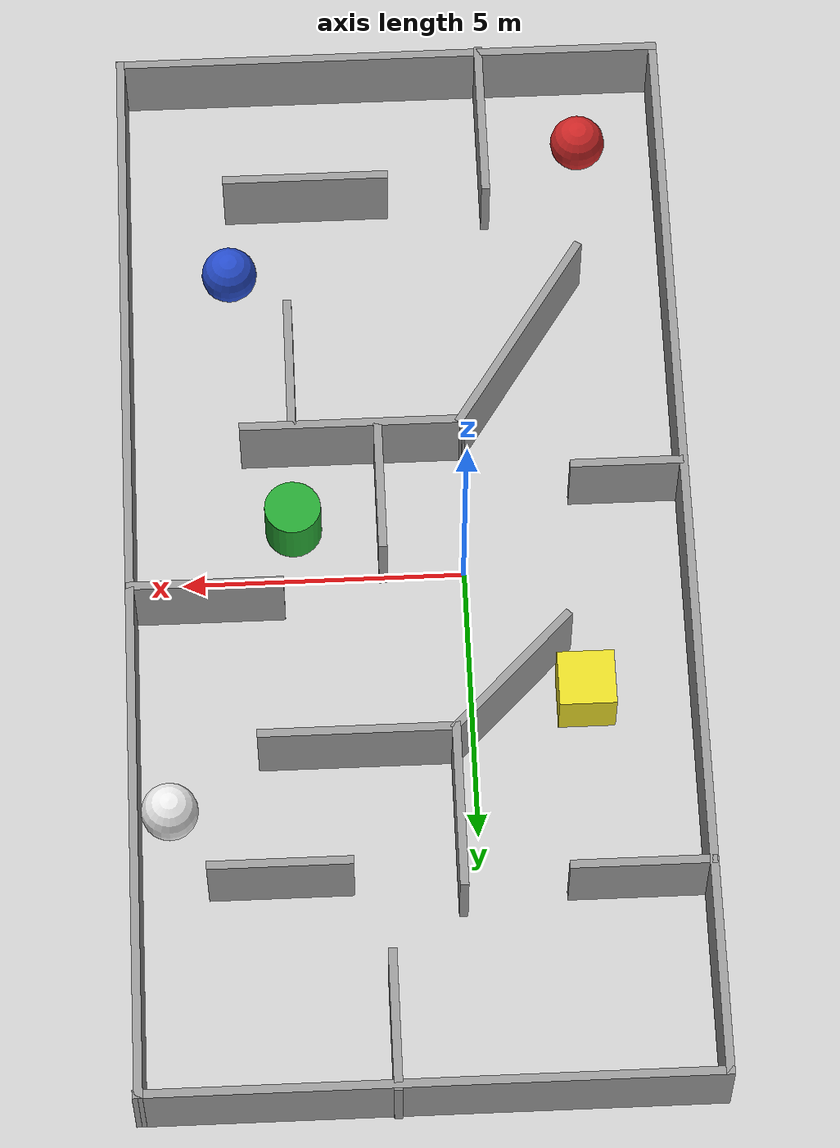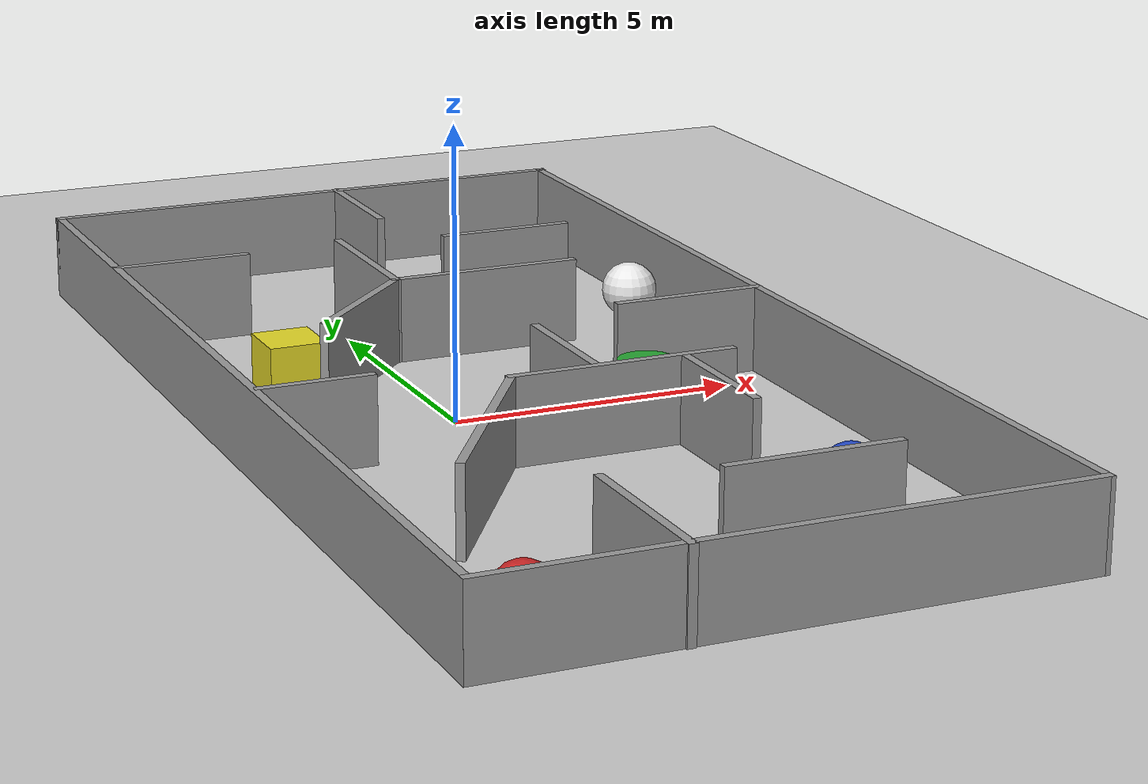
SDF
<sdf version="1.7">
 <world name="default">
  <model name="ground_plane">
   <static>1</static>
   <link name="link">
    <collision name="collision">
     <geometry><plane><normal>0 0 1</normal><size>100 100</size></plane></geometry>
     <surface><friction><ode><mu>100</mu><mu2>50</mu2></ode></friction></surface>
    </collision>
    <visual name="visual">
     <cast_shadows>0</cast_shadows>
     <geometry><plane><normal>0 0 1</normal><size>100 100</size></plane></geometry>
     <material>
      <script><uri>file://media/materials/scripts/gazebo.material</uri><name>Gazebo/Grey</name></script>
     </material>
    </visual>
   </link>
  </model>
  <model name="puzzle">
   <pose>1 0 0 0 -0 1.57</pose>
   <link name="Wall_0">
    <collision name="Wall_0_Collision">
     <geometry><box><size>20 0.15 1.5</size></box></geometry>
     <pose>0 0 0.75 0 -0 0</pose>
    </collision>
    <visual name="Wall_0_Visual">
     <pose>0 0 0.75 0 -0 0</pose>
     <geometry><box><size>20 0.15 1.5</size></box></geometry>
     <material>
      <script><uri>file://media/materials/scripts/gazebo.material</uri><name>Gazebo/Grey</name></script>
      <ambient>1 1 1 1</ambient>
     </material>
     <meta><layer>0</layer></meta>
    </visual>
    <pose>-0.003 -4.885 0 0 -0 -0.00131</pose>
   </link>
   <link name="Wall_10">
    <collision name="Wall_10_Collision">
     <geometry><box><size>3 0.15 1.5</size></box></geometry>
     <pose>0 0 0.75 0 -0 0</pose>
    </collision>
    <visual name="Wall_10_Visual">
     <pose>0 0 0.75 0 -0 0</pose>
     <geometry><box><size>3 0.15 1.5</size></box></geometry>
     <material>
      <script><uri>file://media/materials/scripts/gazebo.material</uri><name>Gazebo/Grey</name></script>
      <ambient>1 1 1 1</ambient>
     </material>
     <meta><layer>0</layer></meta>
    </visual>
    <pose>-8.533 1.712 0 0 -0 0</pose>
   </link>
   <link name="Wall_12">
    <collision name="Wall_12_Collision">
     <geometry><box><size>4.22942 0.15 1.5</size></box></geometry>
     <pose>0 0 0.75 0 -0 0</pose>
    </collision>
    <visual name="Wall_12_Visual">
     <pose>0 0 0.75 0 -0 0</pose>
     <geometry><box><size>4.22942 0.15 1.5</size></box></geometry>
     <material>
      <script><uri>file://media/materials/scripts/gazebo.material</uri><name>Gazebo/Grey</name></script>
      <ambient>1 1 1 1</ambient>
     </material>
     <meta><layer>0</layer></meta>
    </visual>
    <pose>-4.08 2.1565 0 0 -0 -0.583856</pose>
   </link>
   <link name="Wall_13">
    <collision name="Wall_13_Collision">
     <geometry><box><size>4 0.15 1.5</size></box></geometry>
     <pose>0 0 0.75 0 -0 0</pose>
    </collision>
    <visual name="Wall_13_Visual">
     <pose>0 0 0.75 0 -0 0</pose>
     <geometry><box><size>4 0.15 1.5</size></box></geometry>
     <material>
      <script><uri>file://media/materials/scripts/gazebo.material</uri><name>Gazebo/Grey</name></script>
      <ambient>1 1 1 1</ambient>
     </material>
     <meta><layer>0</layer></meta>
    </visual>
    <pose>-2.378 -0.893 0 0 -0 -1.5708</pose>
   </link>
   <link name="Wall_15">
    <collision name="Wall_15_Collision">
     <geometry><box><size>2.5 0.15 1.5</size></box></geometry>
     <pose>0 0 0.75 0 -0 0</pose>
    </collision>
    <visual name="Wall_15_Visual">
     <pose>0 0 0.75 0 -0 0</pose>
     <geometry><box><size>2.5 0.15 1.5</size></box></geometry>
     <material>
      <script><uri>file://media/materials/scripts/gazebo.material</uri><name>Gazebo/Grey</name></script>
      <ambient>1 1 1 1</ambient>
     </material>
     <meta><layer>0</layer></meta>
    </visual>
    <pose>-1.175 -0.443 0 0 -0 0</pose>
   </link>
   <link name="Wall_19">
    <collision name="Wall_19_Collision">
     <geometry><box><size>2.5 0.15 1.5</size></box></geometry>
     <pose>0 0 0.75 0 -0 0</pose>
    </collision>
    <visual name="Wall_19_Visual">
     <pose>0 0 0.75 0 -0 0</pose>
     <geometry><box><size>2.5 0.15 1.5</size></box></geometry>
     <material>
      <script><uri>file://media/materials/scripts/gazebo.material</uri><name>Gazebo/Grey</name></script>
      <ambient>1 1 1 1</ambient>
     </material>
     <meta><layer>0</layer></meta>
    </visual>
    <pose>-3.639 -1.965 0 0 -0 3.14159</pose>
   </link>
   <link name="Wall_21">
    <collision name="Wall_21_Collision">
     <geometry><box><size>3 0.15 1.5</size></box></geometry>
     <pose>0 0 0.75 0 -0 0</pose>
    </collision>
    <visual name="Wall_21_Visual">
     <pose>0 0 0.75 0 -0 0</pose>
     <geometry><box><size>3 0.15 1.5</size></box></geometry>
     <material>
      <script><uri>file://media/materials/scripts/gazebo.material</uri><name>Gazebo/Grey</name></script>
      <ambient>1 1 1 1</ambient>
     </material>
     <meta><layer>0</layer></meta>
    </visual>
    <pose>-7.415 -1.557 0 0 -0 -1.5708</pose>
   </link>
   <link name="Wall_24">
    <collision name="Wall_24_Collision">
     <geometry><box><size>2.75 0.15 1.5</size></box></geometry>
     <pose>0 0 0.75 0 -0 0</pose>
    </collision>
    <visual name="Wall_24_Visual">
     <pose>0 0 0.75 0 -0 0</pose>
     <geometry><box><size>2.75 0.15 1.5</size></box></geometry>
     <material>
      <script><uri>file://media/materials/scripts/gazebo.material</uri><name>Gazebo/Grey</name></script>
      <ambient>1 1 1 1</ambient>
     </material>
     <meta><layer>0</layer></meta>
    </visual>
    <pose>0.645 -3.575 0 0 -0 -1.5708</pose>
   </link>
   <link name="Wall_26">
    <collision name="Wall_26_Collision">
     <geometry><box><size>2 0.15 1.5</size></box></geometry>
     <pose>0 0 0.75 0 -0 0</pose>
    </collision>
    <visual name="Wall_26_Visual">
     <pose>0 0 0.75 0 -0 0</pose>
     <geometry><box><size>2 0.15 1.5</size></box></geometry>
     <material>
      <script><uri>file://media/materials/scripts/gazebo.material</uri><name>Gazebo/Grey</name></script>
      <ambient>1 1 1 1</ambient>
     </material>
     <meta><layer>0</layer></meta>
    </visual>
    <pose>-1.406 3.92 0 0 -0 -1.5708</pose>
   </link>
   <link name="Wall_28">
    <collision name="Wall_28_Collision">
     <geometry><box><size>3 0.15 1.5</size></box></geometry>
     <pose>0 0 0.75 0 -0 0</pose>
    </collision>
    <visual name="Wall_28_Visual">
     <pose>0 0 0.75 0 -0 0</pose>
     <geometry><box><size>3 0.15 1.5</size></box></geometry>
     <material>
      <script><uri>file://media/materials/scripts/gazebo.material</uri><name>Gazebo/Grey</name></script>
      <ambient>1 1 1 1</ambient>
     </material>
     <meta><layer>0</layer></meta>
    </visual>
    <pose>2.518 1.6855 0 0 -0 -0.78515</pose>
   </link>
   <link name="Wall_29">
    <collision name="Wall_29_Collision">
     <geometry><box><size>3.5 0.15 1.5</size></box></geometry>
     <pose>0 0 0.75 0 -0 0</pose>
    </collision>
    <visual name="Wall_29_Visual">
     <pose>0 0 0.75 0 -0 0</pose>
     <geometry><box><size>3.5 0.15 1.5</size></box></geometry>
     <material>
      <script><uri>file://media/materials/scripts/gazebo.material</uri><name>Gazebo/Grey</name></script>
      <ambient>1 1 1 1</ambient>
     </material>
     <meta><layer>0</layer></meta>
    </visual>
    <pose>3.526 -0.997 0 0 -0 -1.5708</pose>
   </link>
   <link name="Wall_31">
    <collision name="Wall_31_Collision">
     <geometry><box><size>3 0.15 1.5</size></box></geometry>
     <pose>0 0 0.75 0 -0 0</pose>
    </collision>
    <visual name="Wall_31_Visual">
     <pose>0 0 0.75 0 -0 0</pose>
     <geometry><box><size>3 0.15 1.5</size></box></geometry>
     <material>
      <script><uri>file://media/materials/scripts/gazebo.material</uri><name>Gazebo/Grey</name></script>
      <ambient>1 1 1 1</ambient>
     </material>
     <meta><layer>0</layer></meta>
    </visual>
    <pose>4.951 0.678 0 0 -0 0</pose>
   </link>
   <link name="Wall_34">
    <collision name="Wall_34_Collision">
     <geometry><box><size>2.5 0.15 1.5</size></box></geometry>
     <pose>0 0 0.75 0 -0 0</pose>
    </collision>
    <visual name="Wall_34_Visual">
     <pose>0 0 0.75 0 -0 0</pose>
     <geometry><box><size>2.5 0.15 1.5</size></box></geometry>
     <material>
      <script><uri>file://media/materials/scripts/gazebo.material</uri><name>Gazebo/Grey</name></script>
      <ambient>1 1 1 1</ambient>
     </material>
     <meta><layer>0</layer></meta>
    </visual>
    <pose>5.915 -2.424 0 0 -0 -1.5708</pose>
   </link>
   <link name="Wall_36">
    <collision name="Wall_36_Collision">
     <geometry><box><size>2.5 0.15 1.5</size></box></geometry>
     <pose>0 0 0.75 0 -0 0</pose>
    </collision>
    <visual name="Wall_36_Visual">
     <pose>0 0 0.75 0 -0 0</pose>
     <geometry><box><size>2.5 0.15 1.5</size></box></geometry>
     <material>
      <script><uri>file://media/materials/scripts/gazebo.material</uri><name>Gazebo/Grey</name></script>
      <ambient>1 1 1 1</ambient>
     </material>
     <meta><layer>0</layer></meta>
    </visual>
    <pose>8.783 -0.586 0 0 -0 3.14159</pose>
   </link>
   <link name="Wall_38">
    <collision name="Wall_38_Collision">
     <geometry><box><size>2.5 0.15 1.5</size></box></geometry>
     <pose>0 0 0.75 0 -0 0</pose>
    </collision>
    <visual name="Wall_38_Visual">
     <pose>0 0 0.75 0 -0 0</pose>
     <geometry><box><size>2.5 0.15 1.5</size></box></geometry>
     <material>
      <script><uri>file://media/materials/scripts/gazebo.material</uri><name>Gazebo/Grey</name></script>
      <ambient>1 1 1 1</ambient>
     </material>
     <meta><layer>0</layer></meta>
    </visual>
    <pose>6.157 3.73 0 0 -0 -1.5708</pose>
   </link>
   <link name="Wall_4">
    <collision name="Wall_4_Collision">
     <geometry><box><size>9.9468 0.15 1.5</size></box></geometry>
     <pose>0 0 0.75 0 -0 0</pose>
    </collision>
    <visual name="Wall_4_Visual">
     <pose>0 0 0.75 0 -0 0</pose>
     <geometry><box><size>9.9468 0.15 1.5</size></box></geometry>
     <material>
      <script><uri>file://media/materials/scripts/gazebo.material</uri><name>Gazebo/Grey</name></script>
      <ambient>1 1 1 1</ambient>
     </material>
     <meta><layer>0</layer></meta>
    </visual>
    <pose>-9.928 0.0265 0 0 -0 1.5708</pose>
   </link>
   <link name="Wall_7">
    <collision name="Wall_7_Collision">
     <geometry><box><size>20 0.15 1.5</size></box></geometry>
     <pose>0 0 0.75 0 -0 0</pose>
    </collision>
    <visual name="Wall_7_Visual">
     <pose>0 0 0.75 0 -0 0</pose>
     <geometry><box><size>20 0.15 1.5</size></box></geometry>
     <material>
      <script><uri>file://media/materials/scripts/gazebo.material</uri><name>Gazebo/Grey</name></script>
      <ambient>1 1 1 1</ambient>
     </material>
     <meta><layer>0</layer></meta>
    </visual>
    <pose>-0.003 4.925 0 0 -0 0</pose>
   </link>
   <link name="Wall_8">
    <collision name="Wall_8_Collision">
     <geometry><box><size>10 0.15 1.5</size></box></geometry>
     <pose>0 0 0.75 0 -0 0</pose>
    </collision>
    <visual name="Wall_8_Visual">
     <pose>0 0 0.75 0 -0 0</pose>
     <geometry><box><size>10 0.15 1.5</size></box></geometry>
     <material>
      <script><uri>file://media/materials/scripts/gazebo.material</uri><name>Gazebo/Grey</name></script>
      <ambient>1 1 1 1</ambient>
     </material>
     <meta><layer>0</layer></meta>
    </visual>
    <pose>9.922 0 0 0 -0 -1.5708</pose>
   </link>
   <static>1</static>
  </model>
  <model name="unit_box">
   <pose>-2 2.49999 0.499995 1e-05 0 -0.000548</pose>
   <link name="link">
    <inertial>
     <mass>1</mass>
     <inertia>
      <ixx>0.166667</ixx>
      <ixy>0</ixy>
      <ixz>0</ixz>
      <iyy>0.166667</iyy>
      <iyz>0</iyz>
      <izz>0.166667</izz>
     </inertia>
    </inertial>
    <collision name="collision"><geometry><box><size>1 1 1</size></box></geometry></collision>
    <visual name="visual">
     <geometry><box><size>1 1 1</size></box></geometry>
     <material>
      <script><name>Gazebo/Yellow</name><uri>file://media/materials/scripts/gazebo.material</uri></script>
     </material>
    </visual>
   </link>
  </model>
  <model name="unit_sphere">
   <pose>-2.5 -8.5 0.5 0 -0 0</pose>
   <link name="link">
    <inertial>
     <mass>1</mass>
     <inertia><ixx>0.1</ixx><ixy>0</ixy><ixz>0</ixz><iyy>0.1</iyy><iyz>0</iyz><izz>0.1</izz></inertia>
    </inertial>
    <collision name="collision"><geometry><sphere><radius>0.5</radius></sphere></geometry></collision>
    <visual name="visual">
     <geometry><sphere><radius>0.5</radius></sphere></geometry>
     <material>
      <script><name>Gazebo/Red</name><uri>file://media/materials/scripts/gazebo.material</uri></script>
     </material>
    </visual>
   </link>
  </model>
  <model name="unit_sphere_0">
   <pose>4 -6 0.5 0 -0 0</pose>
   <link name="link">
    <inertial>
     <mass>1</mass>
     <inertia><ixx>0.1</ixx><ixy>0</ixy><ixz>0</ixz><iyy>0.1</iyy><iyz>0</iyz><izz>0.1</izz></inertia>
    </inertial>
    <collision name="collision"><geometry><sphere><radius>0.5</radius></sphere></geometry></collision>
    <visual name="visual">
     <geometry><sphere><radius>0.5</radius></sphere></geometry>
     <material>
      <script><name>Gazebo/Blue</name><uri>file://media/materials/scripts/gazebo.material</uri></script>
     </material>
    </visual>
   </link>
  </model>
  <model name="unit_cylinder">
   <pose>3 -1 0.499999 2e-06 1e-06 0</pose>
   <link name="link">
    <inertial>
     <mass>1</mass>
     <inertia><ixx>0.145833</ixx><ixy>0</ixy><ixz>0</ixz><iyy>0.145833</iyy><iyz>0</iyz><izz>0.125</izz></inertia>
    </inertial>
    <collision name="collision">
     <geometry><cylinder><radius>0.5</radius><length>1</length></cylinder></geometry>
    </collision>
    <visual name="visual">
     <geometry><cylinder><radius>0.5</radius><length>1</length></cylinder></geometry>
     <material>
      <script><name>Gazebo/Green</name><uri>file://media/materials/scripts/gazebo.material</uri></script>
     </material>
    </visual>
   </link>
  </model>
  <model name="unit_sphere_1">
   <pose>5.31095 4.50033 0.5 -0.000672 -0.020173 0.000199</pose>
   <link name="link">
    <inertial>
     <mass>1</mass>
     <inertia><ixx>0.1</ixx><ixy>0</ixy><ixz>0</ixz><iyy>0.1</iyy><iyz>0</iyz><izz>0.1</izz></inertia>
    </inertial>
    <collision name="collision"><geometry><sphere><radius>0.5</radius></sphere></geometry></collision>
    <visual name="visual">
     <geometry><sphere><radius>0.5</radius></sphere></geometry>
     <material>
      <script><name>Gazebo/White</name><uri>file://media/materials/scripts/gazebo.material</uri></script>
     </material>
    </visual>
   </link>
  </model>
 </world>
</sdf>
